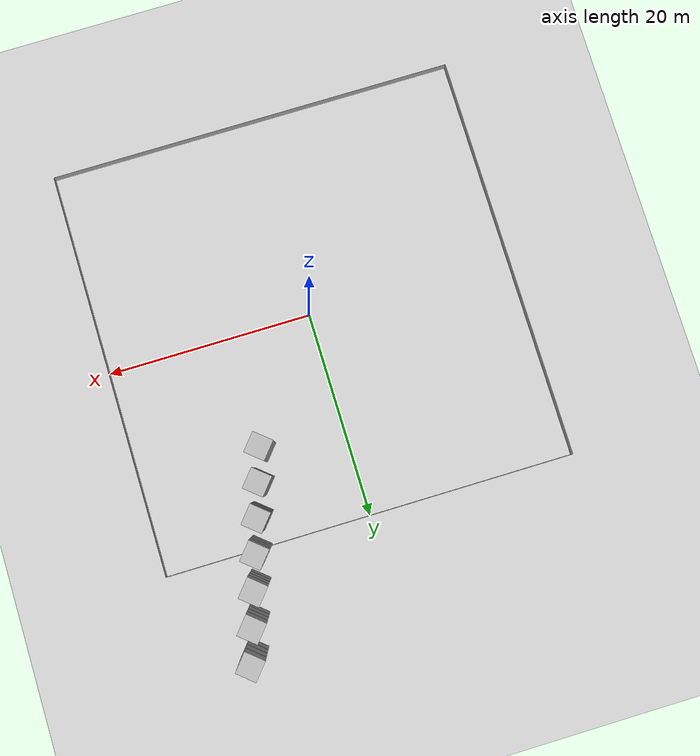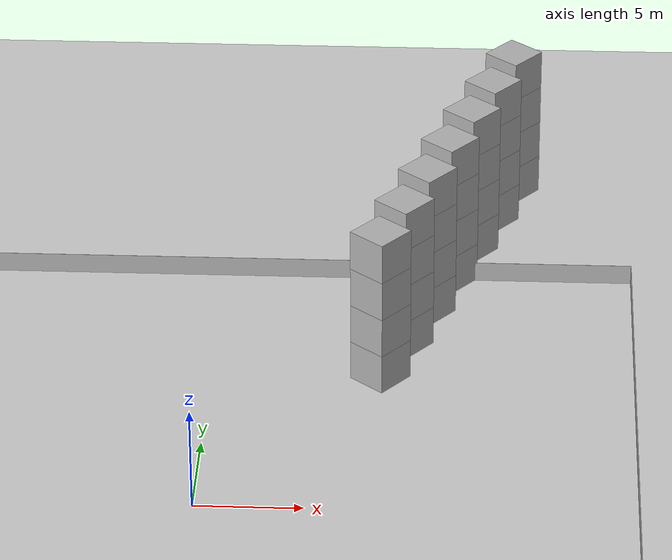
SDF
<sdf version='1.9'>
  <world name='swarm_navdelay_glas'>
	<physics type="ode">
  	<max_step_size>0.004</max_step_size>
  	<real_time_factor>1.0</real_time_factor>
  	<real_time_update_rate>250</real_time_update_rate>
	</physics>
	<plugin name='gz::sim::systems::Physics' filename='gz-sim-physics-system'/>
	<plugin name='gz::sim::systems::UserCommands' filename='gz-sim-user-commands-system'/>
	<plugin name='gz::sim::systems::SceneBroadcaster' filename='gz-sim-scene-broadcaster-system'/>
	<plugin name='gz::sim::systems::Contact' filename='gz-sim-contact-system'/>
	<plugin name='gz::sim::systems::Imu' filename='gz-sim-imu-system'/>
	<plugin name='gz::sim::systems::AirPressure' filename='gz-sim-air-pressure-system'/>
	<plugin name='gz::sim::systems::NavSat' filename='gz-sim-navsat-system'/>
	<plugin name='gz::sim::systems::ApplyLinkWrench' filename='gz-sim-apply-link-wrench-system'/>
	<plugin name='gz::sim::systems::Sensors' filename='gz-sim-sensors-system'>
  	<render_engine>ogre2</render_engine>
	</plugin>

	<spherical_coordinates>
  	<surface_model>EARTH_WGS84</surface_model>
  	<world_frame_orientation>ENU</world_frame_orientation>
  	<latitude_deg>24.484043629238872</latitude_deg>
  	<longitude_deg>54.36068616768677</longitude_deg>
  	<elevation>-86</elevation>
  	<heading_deg>0</heading_deg>
	</spherical_coordinates>

	<gui fullscreen='false'>
  	<plugin name='3D View' filename='GzScene3D'>
    	<gz-gui>
      	<title>3D View</title>
      	<property type='bool' key='showTitleBar'>0</property>
      	<property type='string' key='state'>docked</property>
    	</gz-gui>
    	<engine>ogre2</engine>
    	<scene>scene</scene>
    	<ambient_light>0.5984631152222222 0.5984631152222222 0.5984631152222222</ambient_light>
    	<background_color>0.8984631152222222 0.8984631152222222 0.8984631152222222</background_color>
    	<camera_pose>-6 0 6 0 0.5 0</camera_pose>
  	</plugin>
  	<plugin name='World control' filename='WorldControl'>
    	<gz-gui>
      	<title>World control</title>
      	<property type='bool' key='showTitleBar'>0</property>
      	<property type='bool' key='resizable'>0</property>
      	<property type='double' key='height'>72</property>
      	<property type='double' key='width'>121</property>
      	<property type='double' key='z'>1</property>
      	<property type='string' key='state'>floating</property>
      	<anchors target='3D View'>
        	<line own='left' target='left'/>
        	<line own='bottom' target='bottom'/>
      	</anchors>
    	</gz-gui>
    	<play_pause>1</play_pause>
    	<step>1</step>
    	<start_paused>1</start_paused>
  	</plugin>
  	<plugin name='World stats' filename='WorldStats'>
    	<gz-gui>
      	<title>World stats</title>
      	<property type='bool' key='showTitleBar'>0</property>
      	<property type='bool' key='resizable'>0</property>
      	<property type='double' key='height'>110</property>
      	<property type='double' key='width'>290</property>
      	<property type='double' key='z'>1</property>
      	<property type='string' key='state'>floating</property>
      	<anchors target='3D View'>
        	<line own='right' target='right'/>
        	<line own='bottom' target='bottom'/>
      	</anchors>
    	</gz-gui>
    	<sim_time>1</sim_time>
    	<real_time>1</real_time>
    	<real_time_factor>1</real_time_factor>
    	<iterations>1</iterations>
  	</plugin>
  	<plugin name='Entity tree' filename='EntityTree'/>
	</gui>
	<gravity>0 0 -9.8</gravity>
	<magnetic_field>6e-06 2.3e-05 -4.2e-05</magnetic_field>
	<atmosphere type='adiabatic'/>
	<scene>
  	<grid>false</grid>
  	<ambient>0.4 0.4 0.4 1</ambient>
  	<background>0.7 0.7 0.7 1</background>
  	<shadows>true</shadows>
	</scene>
	<model name='ground_plane'>
  	<static>true</static>
  	<link name='link'>
    	<collision name='collision'>
      	<geometry>
        	<plane>
          	<normal>0 0 1</normal>
          	<size>1 1</size>
        	</plane>
      	</geometry>
      	<surface>
        	<friction>
          	<ode/>
        	</friction>
        	<bounce/>
        	<contact/>
      	</surface>
    	</collision>
    	<visual name='visual'>
      	<geometry>
        	<plane>
          	<normal>0 0 1</normal>
          	<size>100 100</size>
        	</plane>
      	</geometry>
      	<material>
        	<ambient>0.8 0.8 0.8 1</ambient>
        	<diffuse>0.8 0.8 0.8 1</diffuse>
        	<specular>0.8 0.8 0.8 1</specular>
      	</material>
    	</visual>
    	<pose>0 0 0 0 -0 0</pose>
    	<inertial>
      	<pose>0 0 0 0 -0 0</pose>
      	<mass>1</mass>
      	<inertia>
        	<ixx>1</ixx>
        	<ixy>0</ixy>
        	<ixz>0</ixz>
        	<iyy>1</iyy>
        	<iyz>0</iyz>
        	<izz>1</izz>
      	</inertia>
    	</inertial>
    	<enable_wind>false</enable_wind>
  	</link>
  	<pose>0 0 0 0 -0 0</pose>
  	<self_collide>false</self_collide>
	</model>
 	<model name='wall_1'>
  	<pose>-20 0 .5 0 0 -1.57</pose>
  	<static>true</static>
  	<link name='link'>
    	<collision name='collision'>
      	<geometry>
        	<box>
          	<size>40 .01 1</size>
        	</box>
      	</geometry>
    	</collision>
    	<visual name='visual'>
      	<geometry>
        	<box>
          	<size>40 .01 1</size>
        	</box>
      	</geometry>
      	<material>
        	<ambient>0.7 0.7 0.7 1</ambient>
        	<diffuse>0.7 0.7 0.7 1</diffuse>
        	<specular>0.7 0.7 0.7 1</specular>
      	</material>
    	</visual>
    	<inertial>
      	<pose>0 0 0 0 0 0</pose>
      	<mass>1</mass>
      	<inertia>
        	<ixx>1</ixx>
        	<ixy>0</ixy>
        	<ixz>0</ixz>
        	<iyy>1</iyy>
        	<iyz>0</iyz>
        	<izz>1</izz>
      	</inertia>
    	</inertial>
    	<enable_wind>false</enable_wind>
  	</link>
  	<self_collide>false</self_collide>
	</model>
	<model name='wall_2'>
  	<pose>20 0 .5 0 0 -1.57</pose>
  	<static>true</static>
  	<link name='link'>
    	<collision name='collision'>
      	<geometry>
        	<box>
          	<size>40 .01 1</size>
        	</box>
      	</geometry>
    	</collision>
    	<visual name='visual'>
      	<geometry>
        	<box>
          	<size>40 .01 1</size>
        	</box>
      	</geometry>
      	<material>
        	<ambient>0.7 0.7 0.7 1</ambient>
        	<diffuse>0.7 0.7 0.7 1</diffuse>
        	<specular>0.7 0.7 0.7 1</specular>
      	</material>
    	</visual>
    	<inertial>
      	<pose>0 0 0 0 0 0</pose>
      	<mass>1</mass>
      	<inertia>
        	<ixx>1</ixx>
        	<ixy>0</ixy>
        	<ixz>0</ixz>
        	<iyy>1</iyy>
        	<iyz>0</iyz>
        	<izz>1</izz>
      	</inertia>
    	</inertial>
    	<enable_wind>false</enable_wind>
  	</link>
  	<self_collide>false</self_collide>
	</model>
	<model name='wall_3'>
  	<pose>0 20 .5 0 0 0</pose>
  	<static>true</static>
  	<link name='link'>
    	<collision name='collision'>
      	<geometry>
        	<box>
          	<size>40 .01 1</size>
        	</box>
      	</geometry>
    	</collision>
    	<visual name='visual'>
      	<geometry>
        	<box>
          	<size>40 .01 1</size>
        	</box>
      	</geometry>
      	<material>
        	<ambient>0.7 0.7 0.7 1</ambient>
        	<diffuse>0.7 0.7 0.7 1</diffuse>
        	<specular>0.7 0.7 0.7 1</specular>
      	</material>
    	</visual>
    	<inertial>
      	<pose>0 0 0 0 0 0</pose>
      	<mass>1</mass>
      	<inertia>
        	<ixx>1</ixx>
        	<ixy>0</ixy>
        	<ixz>0</ixz>
        	<iyy>1</iyy>
        	<iyz>0</iyz>
        	<izz>1</izz>
      	</inertia>
    	</inertial>
    	<enable_wind>false</enable_wind>
  	</link>
  	<self_collide>false</self_collide>
	</model>
	<model name='wall_4'>
  	<pose>0 -20 .5 0 0 0</pose>
  	<static>true</static>
  	<link name='link'>
    	<collision name='collision'>
      	<geometry>
        	<box>
          	<size>40 .01 1</size>
        	</box>
      	</geometry>
    	</collision>
    	<visual name='visual'>
      	<geometry>
        	<box>
          	<size>40 .01 1</size>
        	</box>
      	</geometry>
      	<material>
        	<ambient>0.7 0.7 0.7 1</ambient>
        	<diffuse>0.7 0.7 0.7 1</diffuse>
        	<specular>0.7 0.7 0.7 1</specular>
      	</material>
    	</visual>
    	<inertial>
      	<pose>0 0 0 0 0 0</pose>
      	<mass>1</mass>
      	<inertia>
        	<ixx>1</ixx>
        	<ixy>0</ixy>
        	<ixz>0</ixz>
        	<iyy>1</iyy>
        	<iyz>0</iyz>
        	<izz>1</izz>
      	</inertia>
    	</inertial>
    	<enable_wind>false</enable_wind>
  	</link>
  	<self_collide>false</self_collide>
	</model>

 	<model name="obstacle_left_1">
  	<static>true</static>
  	<pose>8 11 1 0 0 -0.7</pose>
  	<link name="link">
    	<collision name="collision">
      	<geometry>
        	<box>
          	<size>2 2 2</size>
        	</box>
      	</geometry>
    	</collision>
    	<visual name="visual">
      	<geometry>
        	<box>
          	<size>2 2 2</size>
        	</box>
      	</geometry>
       	<material>
        	<ambient>0.7 0.7 0.7 1</ambient>
        	<diffuse>0.7 0.7 0.7 1</diffuse>
        	<specular>0.7 0.7 0.7 1</specular>
      	</material>
    	</visual>
  	</link>
	</model>
	<model name="obstacle_left_11">
  	<static>true</static>
  	<pose>8 11 3 0 0 -0.7</pose>
  	<link name="link">
    	<collision name="collision">
      	<geometry>
        	<box>
          	<size>2 2 2</size>
        	</box>
      	</geometry>
    	</collision>
    	<visual name="visual">
      	<geometry>
        	<box>
          	<size>2 2 2</size>
        	</box>
      	</geometry>
       	<material>
        	<ambient>0.7 0.7 0.7 1</ambient>
        	<diffuse>0.7 0.7 0.7 1</diffuse>
        	<specular>0.7 0.7 0.7 1</specular>
      	</material>
    	</visual>
  	</link>
	</model>
	<model name="obstacle_left_12">
  	<static>true</static>
  	<pose>8 11 5 0 0 -0.7</pose>
  	<link name="link">
    	<collision name="collision">
      	<geometry>
        	<box>
          	<size>2 2 2</size>
        	</box>
      	</geometry>
    	</collision>
    	<visual name="visual">
      	<geometry>
        	<box>
          	<size>2 2 2</size>
        	</box>
      	</geometry>
       	<material>
        	<ambient>0.7 0.7 0.7 1</ambient>
        	<diffuse>0.7 0.7 0.7 1</diffuse>
        	<specular>0.7 0.7 0.7 1</specular>
      	</material>
    	</visual>
  	</link>
	</model>
	<model name="obstacle_left_13">
  	<static>true</static>
  	<pose>8 11 7 0 0 -0.7</pose>
  	<link name="link">
    	<collision name="collision">
      	<geometry>
        	<box>
          	<size>2 2 2</size>
        	</box>
      	</geometry>
    	</collision>
    	<visual name="visual">
      	<geometry>
        	<box>
          	<size>2 2 2</size>
        	</box>
      	</geometry>
       	<material>
        	<ambient>0.7 0.7 0.7 1</ambient>
        	<diffuse>0.7 0.7 0.7 1</diffuse>
        	<specular>0.7 0.7 0.7 1</specular>
      	</material>
    	</visual>
  	</link>
	</model>

	<model name="obstacle_left_2">
  	<static>true</static>
  	<pose>9 14 1 0 0 -0.7</pose>
  	<link name="link">
    	<collision name="collision">
      	<geometry>
        	<box>
          	<size>2 2 2</size>
        	</box>
      	</geometry>
    	</collision>
    	<visual name="visual">
      	<geometry>
        	<box>
          	<size>2 2 2</size>
        	</box>
      	</geometry>
       	<material>
        	<ambient>0.7 0.7 0.7 1</ambient>
        	<diffuse>0.7 0.7 0.7 1</diffuse>
        	<specular>0.7 0.7 0.7 1</specular>
      	</material>
    	</visual>
  	</link>
	</model>
	<model name="obstacle_left_21">
  	<static>true</static>
  	<pose>9 14 3 0 0 -0.7</pose>
  	<link name="link">
    	<collision name="collision">
      	<geometry>
        	<box>
          	<size>2 2 2</size>
        	</box>
      	</geometry>
    	</collision>
    	<visual name="visual">
      	<geometry>
        	<box>
          	<size>2 2 2</size>
        	</box>
      	</geometry>
       	<material>
        	<ambient>0.7 0.7 0.7 1</ambient>
        	<diffuse>0.7 0.7 0.7 1</diffuse>
        	<specular>0.7 0.7 0.7 1</specular>
      	</material>
    	</visual>
  	</link>
	</model>
	<model name="obstacle_left_22">
  	<static>true</static>
  	<pose>9 14 5 0 0 -0.7</pose>
  	<link name="link">
    	<collision name="collision">
      	<geometry>
        	<box>
          	<size>2 2 2</size>
        	</box>
      	</geometry>
    	</collision>
    	<visual name="visual">
      	<geometry>
        	<box>
          	<size>2 2 2</size>
        	</box>
      	</geometry>
       	<material>
        	<ambient>0.7 0.7 0.7 1</ambient>
        	<diffuse>0.7 0.7 0.7 1</diffuse>
        	<specular>0.7 0.7 0.7 1</specular>
      	</material>
    	</visual>
  	</link>
	</model>
	<model name="obstacle_left_23">
  	<static>true</static>
  	<pose>9 14 7 0 0 -0.7</pose>
  	<link name="link">
    	<collision name="collision">
      	<geometry>
        	<box>
          	<size>2 2 2</size>
        	</box>
      	</geometry>
    	</collision>
    	<visual name="visual">
      	<geometry>
        	<box>
          	<size>2 2 2</size>
        	</box>
      	</geometry>
       	<material>
        	<ambient>0.7 0.7 0.7 1</ambient>
        	<diffuse>0.7 0.7 0.7 1</diffuse>
        	<specular>0.7 0.7 0.7 1</specular>
      	</material>
    	</visual>
  	</link>
	</model>
	<model name="obstacle_left_3">
  	<static>true</static>
  	<pose>10 17 1 0 0 -0.7</pose>
  	<link name="link">
    	<collision name="collision">
      	<geometry>
        	<box>
          	<size>2 2 2</size>
        	</box>
      	</geometry>
    	</collision>
    	<visual name="visual">
      	<geometry>
        	<box>
          	<size>2 2 2</size>
        	</box>
      	</geometry>
       	<material>
        	<ambient>0.7 0.7 0.7 1</ambient>
        	<diffuse>0.7 0.7 0.7 1</diffuse>
        	<specular>0.7 0.7 0.7 1</specular>
      	</material>
    	</visual>
  	</link>
	</model>
	<model name="obstacle_left_31">
  	<static>true</static>
  	<pose>10 17 3 0 0 -0.7</pose>
  	<link name="link">
    	<collision name="collision">
      	<geometry>
        	<box>
          	<size>2 2 2</size>
        	</box>
      	</geometry>
    	</collision>
    	<visual name="visual">
      	<geometry>
        	<box>
          	<size>2 2 2</size>
        	</box>
      	</geometry>
       	<material>
        	<ambient>0.7 0.7 0.7 1</ambient>
        	<diffuse>0.7 0.7 0.7 1</diffuse>
        	<specular>0.7 0.7 0.7 1</specular>
      	</material>
    	</visual>
  	</link>
	</model>
	<model name="obstacle_left_32">
  	<static>true</static>
  	<pose>10 17 5 0 0 -0.7</pose>
  	<link name="link">
    	<collision name="collision">
      	<geometry>
        	<box>
          	<size>2 2 2</size>
        	</box>
      	</geometry>
    	</collision>
    	<visual name="visual">
      	<geometry>
        	<box>
          	<size>2 2 2</size>
        	</box>
      	</geometry>
       	<material>
        	<ambient>0.7 0.7 0.7 1</ambient>
        	<diffuse>0.7 0.7 0.7 1</diffuse>
        	<specular>0.7 0.7 0.7 1</specular>
      	</material>
    	</visual>
  	</link>
	</model>
	<model name="obstacle_left_33">
  	<static>true</static>
  	<pose>10 17 7 0 0 -0.7</pose>
  	<link name="link">
    	<collision name="collision">
      	<geometry>
        	<box>
          	<size>2 2 2</size>
        	</box>
      	</geometry>
    	</collision>
    	<visual name="visual">
      	<geometry>
        	<box>
          	<size>2 2 2</size>
        	</box>
      	</geometry>
       	<material>
        	<ambient>0.7 0.7 0.7 1</ambient>
        	<diffuse>0.7 0.7 0.7 1</diffuse>
        	<specular>0.7 0.7 0.7 1</specular>
      	</material>
    	</visual>
  	</link>
	</model>
	<model name="obstacle_left_4">
  	<static>true</static>
  	<pose>11 20 1 0 0 -0.7</pose>
  	<link name="link">
    	<collision name="collision">
      	<geometry>
        	<box>
          	<size>2 2 2</size>
        	</box>
      	</geometry>
    	</collision>
    	<visual name="visual">
      	<geometry>
        	<box>
          	<size>2 2 2</size>
        	</box>
      	</geometry>
       	<material>
        	<ambient>0.7 0.7 0.7 1</ambient>
        	<diffuse>0.7 0.7 0.7 1</diffuse>
        	<specular>0.7 0.7 0.7 1</specular>
      	</material>
    	</visual>
  	</link>
	</model>
	<model name="obstacle_left_41">
  	<static>true</static>
  	<pose>11 20 3 0 0 -0.7</pose>
  	<link name="link">
    	<collision name="collision">
      	<geometry>
        	<box>
          	<size>2 2 2</size>
        	</box>
      	</geometry>
    	</collision>
    	<visual name="visual">
      	<geometry>
        	<box>
          	<size>2 2 2</size>
        	</box>
      	</geometry>
       	<material>
        	<ambient>0.7 0.7 0.7 1</ambient>
        	<diffuse>0.7 0.7 0.7 1</diffuse>
        	<specular>0.7 0.7 0.7 1</specular>
      	</material>
    	</visual>
  	</link>
	</model>
	<model name="obstacle_left_42">
  	<static>true</static>
  	<pose>11 20 5 0 0 -0.7</pose>
  	<link name="link">
    	<collision name="collision">
      	<geometry>
        	<box>
          	<size>2 2 2</size>
        	</box>
      	</geometry>
    	</collision>
    	<visual name="visual">
      	<geometry>
        	<box>
          	<size>2 2 2</size>
        	</box>
      	</geometry>
       	<material>
        	<ambient>0.7 0.7 0.7 1</ambient>
        	<diffuse>0.7 0.7 0.7 1</diffuse>
        	<specular>0.7 0.7 0.7 1</specular>
      	</material>
    	</visual>
  	</link>
	</model>
	<model name="obstacle_left_43">
  	<static>true</static>
  	<pose>11 20 7 0 0 -0.7</pose>
  	<link name="link">
    	<collision name="collision">
      	<geometry>
        	<box>
          	<size>2 2 2</size>
        	</box>
      	</geometry>
    	</collision>
    	<visual name="visual">
      	<geometry>
        	<box>
          	<size>2 2 2</size>
        	</box>
      	</geometry>
       	<material>
        	<ambient>0.7 0.7 0.7 1</ambient>
        	<diffuse>0.7 0.7 0.7 1</diffuse>
        	<specular>0.7 0.7 0.7 1</specular>
      	</material>
    	</visual>
  	</link>
	</model>

    <model name="obstacle_left_50">
  	<static>true</static>
  	<pose>12 23 1 0 0 -0.7</pose>
  	<link name="link">
    	<collision name="collision">
      	<geometry>
        	<box>
          	<size>2 2 2</size>
        	</box>
      	</geometry>
    	</collision>
    	<visual name="visual">
      	<geometry>
        	<box>
          	<size>2 2 2</size>
        	</box>
      	</geometry>
       	<material>
        	<ambient>0.7 0.7 0.7 1</ambient>
        	<diffuse>0.7 0.7 0.7 1</diffuse>
        	<specular>0.7 0.7 0.7 1</specular>
      	</material>
    	</visual>
  	</link>
	</model>
    <model name="obstacle_left_51">
  	<static>true</static>
  	<pose>12 23 3 0 0 -0.7</pose>
  	<link name="link">
    	<collision name="collision">
      	<geometry>
        	<box>
          	<size>2 2 2</size>
        	</box>
      	</geometry>
    	</collision>
    	<visual name="visual">
      	<geometry>
        	<box>
          	<size>2 2 2</size>
        	</box>
      	</geometry>
       	<material>
        	<ambient>0.7 0.7 0.7 1</ambient>
        	<diffuse>0.7 0.7 0.7 1</diffuse>
        	<specular>0.7 0.7 0.7 1</specular>
      	</material>
    	</visual>
  	</link>
	</model>
    <model name="obstacle_left_52">
  	<static>true</static>
  	<pose>12 23 5 0 0 -0.7</pose>
  	<link name="link">
    	<collision name="collision">
      	<geometry>
        	<box>
          	<size>2 2 2</size>
        	</box>
      	</geometry>
    	</collision>
    	<visual name="visual">
      	<geometry>
        	<box>
          	<size>2 2 2</size>
        	</box>
      	</geometry>
       	<material>
        	<ambient>0.7 0.7 0.7 1</ambient>
        	<diffuse>0.7 0.7 0.7 1</diffuse>
        	<specular>0.7 0.7 0.7 1</specular>
      	</material>
    	</visual>
  	</link>
	</model>
    <model name="obstacle_left_53">
  	<static>true</static>
  	<pose>12 23 7 0 0 -0.7</pose>
  	<link name="link">
    	<collision name="collision">
      	<geometry>
        	<box>
          	<size>2 2 2</size>
        	</box>
      	</geometry>
    	</collision>
    	<visual name="visual">
      	<geometry>
        	<box>
          	<size>2 2 2</size>
        	</box>
      	</geometry>
       	<material>
        	<ambient>0.7 0.7 0.7 1</ambient>
        	<diffuse>0.7 0.7 0.7 1</diffuse>
        	<specular>0.7 0.7 0.7 1</specular>
      	</material>
    	</visual>
  	</link>
	</model>

    <model name="obstacle_left_60">
  	<static>true</static>
  	<pose>13 26 1 0 0 -0.7</pose>
  	<link name="link">
    	<collision name="collision">
      	<geometry>
        	<box>
          	<size>2 2 2</size>
        	</box>
      	</geometry>
    	</collision>
    	<visual name="visual">
      	<geometry>
        	<box>
          	<size>2 2 2</size>
        	</box>
      	</geometry>
       	<material>
        	<ambient>0.7 0.7 0.7 1</ambient>
        	<diffuse>0.7 0.7 0.7 1</diffuse>
        	<specular>0.7 0.7 0.7 1</specular>
      	</material>
    	</visual>
  	</link>
	</model>
    <model name="obstacle_left_61">
  	<static>true</static>
  	<pose>13 26 3 0 0 -0.7</pose>
  	<link name="link">
    	<collision name="collision">
      	<geometry>
        	<box>
          	<size>2 2 2</size>
        	</box>
      	</geometry>
    	</collision>
    	<visual name="visual">
      	<geometry>
        	<box>
          	<size>2 2 2</size>
        	</box>
      	</geometry>
       	<material>
        	<ambient>0.7 0.7 0.7 1</ambient>
        	<diffuse>0.7 0.7 0.7 1</diffuse>
        	<specular>0.7 0.7 0.7 1</specular>
      	</material>
    	</visual>
  	</link>
	</model>
    <model name="obstacle_left_62">
  	<static>true</static>
  	<pose>13 26 5 0 0 -0.7</pose>
  	<link name="link">
    	<collision name="collision">
      	<geometry>
        	<box>
          	<size>2 2 2</size>
        	</box>
      	</geometry>
    	</collision>
    	<visual name="visual">
      	<geometry>
        	<box>
          	<size>2 2 2</size>
        	</box>
      	</geometry>
       	<material>
        	<ambient>0.7 0.7 0.7 1</ambient>
        	<diffuse>0.7 0.7 0.7 1</diffuse>
        	<specular>0.7 0.7 0.7 1</specular>
      	</material>
    	</visual>
  	</link>
	</model>
    <model name="obstacle_left_63">
  	<static>true</static>
  	<pose>13 26 7 0 0 -0.7</pose>
  	<link name="link">
    	<collision name="collision">
      	<geometry>
        	<box>
          	<size>2 2 2</size>
        	</box>
      	</geometry>
    	</collision>
    	<visual name="visual">
      	<geometry>
        	<box>
          	<size>2 2 2</size>
        	</box>
      	</geometry>
       	<material>
        	<ambient>0.7 0.7 0.7 1</ambient>
        	<diffuse>0.7 0.7 0.7 1</diffuse>
        	<specular>0.7 0.7 0.7 1</specular>
      	</material>
    	</visual>
  	</link>
	</model>

    <model name="obstacle_left_70">
  	<static>true</static>
  	<pose>14 29 1 0 0 -0.7</pose>
  	<link name="link">
    	<collision name="collision">
      	<geometry>
        	<box>
          	<size>2 2 2</size>
        	</box>
      	</geometry>
    	</collision>
    	<visual name="visual">
      	<geometry>
        	<box>
          	<size>2 2 2</size>
        	</box>
      	</geometry>
       	<material>
        	<ambient>0.7 0.7 0.7 1</ambient>
        	<diffuse>0.7 0.7 0.7 1</diffuse>
        	<specular>0.7 0.7 0.7 1</specular>
      	</material>
    	</visual>
  	</link>
	</model>
    <model name="obstacle_left_71">
  	<static>true</static>
  	<pose>14 29 3 0 0 -0.7</pose>
  	<link name="link">
    	<collision name="collision">
      	<geometry>
        	<box>
          	<size>2 2 2</size>
        	</box>
      	</geometry>
    	</collision>
    	<visual name="visual">
      	<geometry>
        	<box>
          	<size>2 2 2</size>
        	</box>
      	</geometry>
       	<material>
        	<ambient>0.7 0.7 0.7 1</ambient>
        	<diffuse>0.7 0.7 0.7 1</diffuse>
        	<specular>0.7 0.7 0.7 1</specular>
      	</material>
    	</visual>
  	</link>
	</model>
    <model name="obstacle_left_72">
  	<static>true</static>
  	<pose>14 29 5 0 0 -0.7</pose>
  	<link name="link">
    	<collision name="collision">
      	<geometry>
        	<box>
          	<size>2 2 2</size>
        	</box>
      	</geometry>
    	</collision>
    	<visual name="visual">
      	<geometry>
        	<box>
          	<size>2 2 2</size>
        	</box>
      	</geometry>
       	<material>
        	<ambient>0.7 0.7 0.7 1</ambient>
        	<diffuse>0.7 0.7 0.7 1</diffuse>
        	<specular>0.7 0.7 0.7 1</specular>
      	</material>
    	</visual>
  	</link>
	</model>
    <model name="obstacle_left_73">
  	<static>true</static>
  	<pose>14 29 7 0 0 -0.7</pose>
  	<link name="link">
    	<collision name="collision">
      	<geometry>
        	<box>
          	<size>2 2 2</size>
        	</box>
      	</geometry>
    	</collision>
    	<visual name="visual">
      	<geometry>
        	<box>
          	<size>2 2 2</size>
        	</box>
      	</geometry>
       	<material>
        	<ambient>0.7 0.7 0.7 1</ambient>
        	<diffuse>0.7 0.7 0.7 1</diffuse>
        	<specular>0.7 0.7 0.7 1</specular>
      	</material>
    	</visual>
  	</link>
	</model>

	<light name='sunUTC' type='directional'>
  	<pose>0 0 500 0 -0 0</pose>
  	<cast_shadows>true</cast_shadows>
  	<intensity>1</intensity>
  	<direction>0.001 0.625 -0.78</direction>
  	<diffuse>0.904 0.904 0.904 1</diffuse>
  	<specular>0.271 0.271 0.271 1</specular>
  	<attenuation>
    	<range>2000</range>
    	<linear>0</linear>
    	<constant>1</constant>
    	<quadratic>0</quadratic>
  	</attenuation>
  	<spot>
    	<inner_angle>0</inner_angle>
    	<outer_angle>0</outer_angle>
    	<falloff>0</falloff>
  	</spot>
	</light>
  </world>
</sdf>
